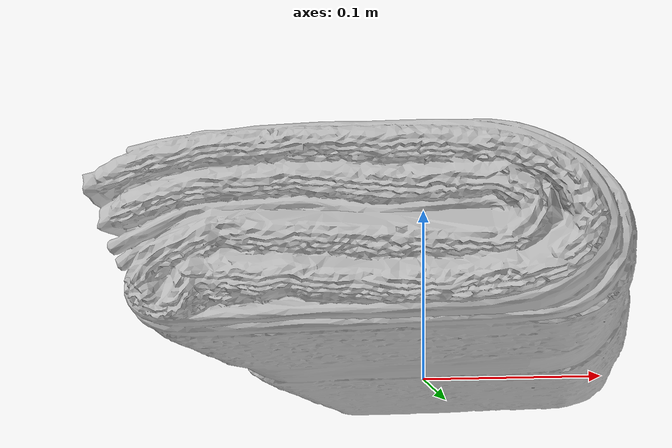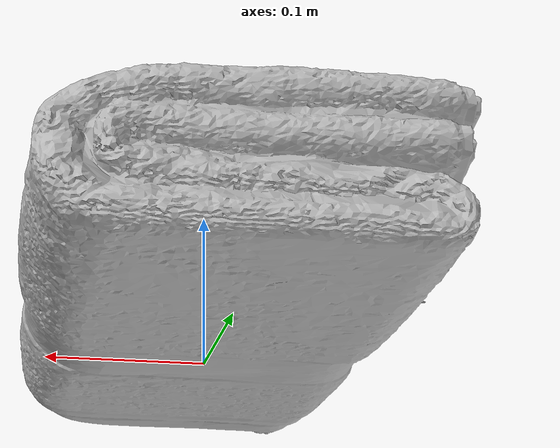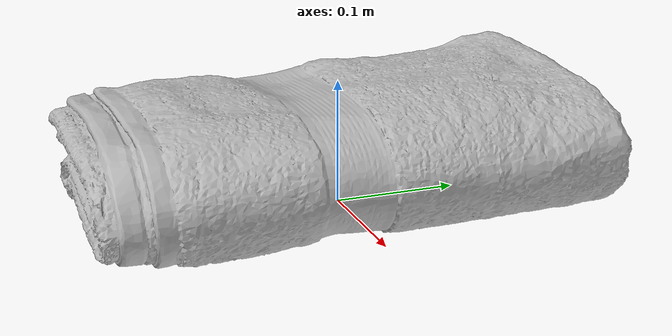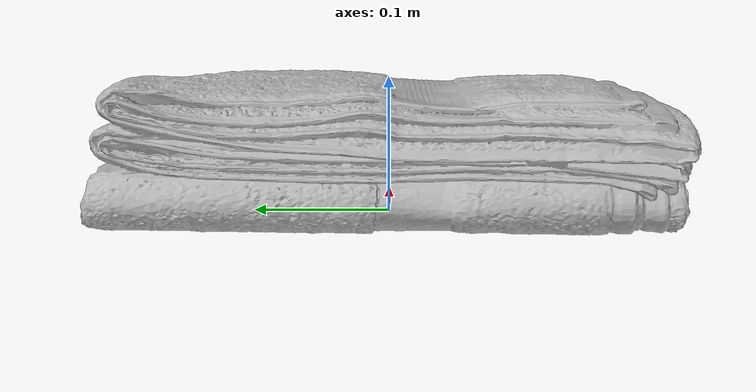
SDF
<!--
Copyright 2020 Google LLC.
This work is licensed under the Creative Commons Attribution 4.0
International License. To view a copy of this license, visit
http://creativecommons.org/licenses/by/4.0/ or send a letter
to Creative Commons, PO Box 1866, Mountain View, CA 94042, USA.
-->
<?xml version="1.0" ?>
<sdf version="1.6">
  <model name="Threshold_Performance_Bath_Sheet_Sandoval_Blue_33_x_63">
    <link name="link_0">
      <visual name="visual">
        <geometry>
          <mesh>
            <uri>meshes/model.obj</uri>
          </mesh>
        </geometry>
      </visual>
      <collision name="collision_0">
        <geometry>
          <mesh>
            <uri>meshes/model.obj</uri>
          </mesh>
        </geometry>
      </collision>
    </link>
  </model>
</sdf>
